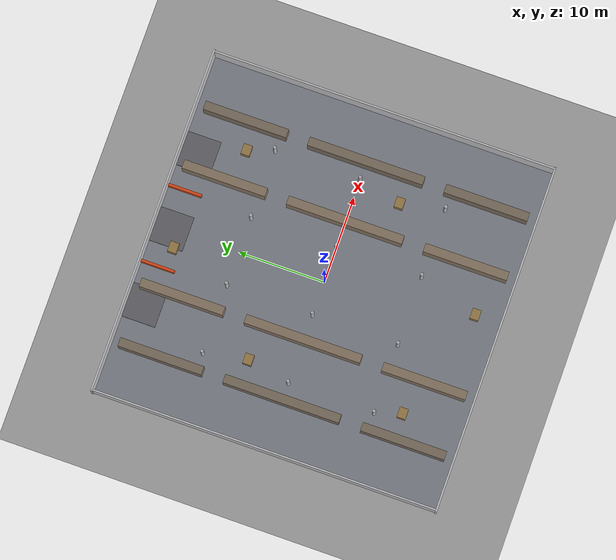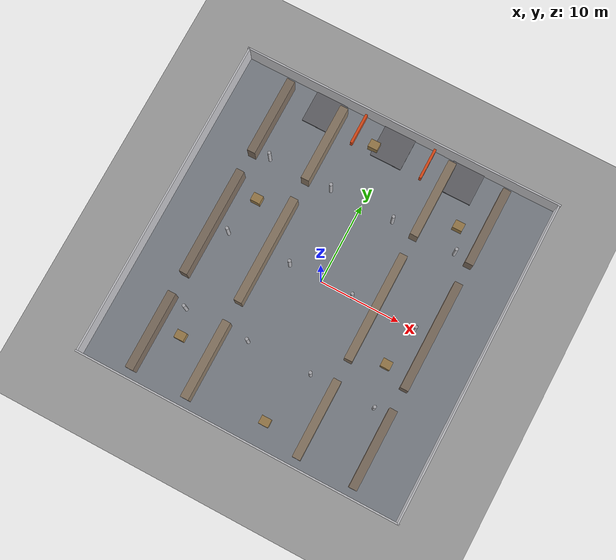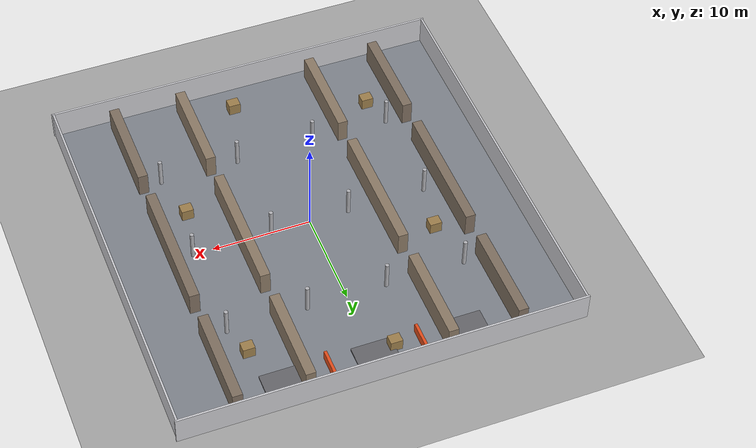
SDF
<?xml version="1.0"?>
<sdf version="1.11">
  <world name="large_warehouse">

    <!-- ── Physics ─────────────────────────────────────────────────────── -->
    <physics name="1ms" type="ignored">
      <max_step_size>0.001</max_step_size>
      <real_time_factor>1.0</real_time_factor>
    </physics>

    <!-- ── System plugins ──────────────────────────────────────────────── -->
    <plugin filename="gz-sim-physics-system"
            name="gz::sim::systems::Physics"/>
    <plugin filename="gz-sim-sensors-system"
            name="gz::sim::systems::Sensors">
      <render_engine>ogre2</render_engine>
    </plugin>
    <plugin filename="gz-sim-scene-broadcaster-system"
            name="gz::sim::systems::SceneBroadcaster"/>
    <plugin filename="gz-sim-user-commands-system"
            name="gz::sim::systems::UserCommands"/>
    <plugin filename="gz-sim-imu-system"
            name="gz::sim::systems::Imu"/>

    <!-- ── Lighting ────────────────────────────────────────────────────── -->
    <light name="overhead_main" type="directional">
      <cast_shadows>true</cast_shadows>
      <pose>0 0 15 0 0 0</pose>
      <diffuse>0.9 0.9 0.9 1</diffuse>
      <specular>0.2 0.2 0.2 1</specular>
      <direction>0 0 -1</direction>
    </light>
    <light name="fill_north" type="directional">
      <cast_shadows>false</cast_shadows>
      <pose>0 15 10 0 0 0</pose>
      <diffuse>0.4 0.4 0.4 1</diffuse>
      <specular>0.0 0.0 0.0 1</specular>
      <direction>0 -0.5 -0.86</direction>
    </light>
    <light name="fill_south" type="directional">
      <cast_shadows>false</cast_shadows>
      <pose>0 -15 10 0 0 0</pose>
      <diffuse>0.3 0.3 0.3 1</diffuse>
      <specular>0.0 0.0 0.0 1</specular>
      <direction>0 0.5 -0.86</direction>
    </light>

    <!-- ── Ground plane ─────────────────────────────────────────────────── -->
    <model name="ground_plane">
      <static>true</static>
      <link name="link">
        <collision name="collision">
          <geometry><plane><normal>0 0 1</normal><size>100 100</size></plane></geometry>
        </collision>
        <visual name="visual">
          <geometry><plane><normal>0 0 1</normal><size>100 100</size></plane></geometry>
          <material>
            <ambient>0.65 0.65 0.65 1</ambient>
            <diffuse>0.65 0.65 0.65 1</diffuse>
          </material>
        </visual>
      </link>
    </model>

    <!-- Warehouse floor overlay (40 × 40 m, polished-concrete look) -->
    <model name="warehouse_floor">
      <static>true</static>
      <pose>0 0 0.001 0 0 0</pose>
      <link name="link">
        <visual name="visual">
          <geometry><box><size>40 40 0.001</size></box></geometry>
          <material>
            <ambient>0.50 0.52 0.55 1</ambient>
            <diffuse>0.50 0.52 0.55 1</diffuse>
            <specular>0.10 0.10 0.10 1</specular>
          </material>
        </visual>
      </link>
    </model>

    <model name="wall_north">
      <static>true</static>
      <pose>0 20 1.5 0 0 0</pose>
      <link name="link">
        <collision name="collision">
          <geometry><box><size>40.4 0.2 3.0</size></box></geometry>
        </collision>
        <visual name="visual">
          <geometry><box><size>40.4 0.2 3.0</size></box></geometry>
          <material><ambient>0.80 0.80 0.82 1</ambient><diffuse>0.80 0.80 0.82 1</diffuse></material>
        </visual>
      </link>
    </model>

    <model name="wall_south">
      <static>true</static>
      <pose>0 -20 1.5 0 0 0</pose>
      <link name="link">
        <collision name="collision">
          <geometry><box><size>40.4 0.2 3.0</size></box></geometry>
        </collision>
        <visual name="visual">
          <geometry><box><size>40.4 0.2 3.0</size></box></geometry>
          <material><ambient>0.80 0.80 0.82 1</ambient><diffuse>0.80 0.80 0.82 1</diffuse></material>
        </visual>
      </link>
    </model>

    <model name="wall_east">
      <static>true</static>
      <pose>20 0 1.5 0 0 0</pose>
      <link name="link">
        <collision name="collision">
          <geometry><box><size>0.2 40.0 3.0</size></box></geometry>
        </collision>
        <visual name="visual">
          <geometry><box><size>0.2 40.0 3.0</size></box></geometry>
          <material><ambient>0.80 0.80 0.82 1</ambient><diffuse>0.80 0.80 0.82 1</diffuse></material>
        </visual>
      </link>
    </model>

    <model name="wall_west">
      <static>true</static>
      <pose>-20 0 1.5 0 0 0</pose>
      <link name="link">
        <collision name="collision">
          <geometry><box><size>0.2 40.0 3.0</size></box></geometry>
        </collision>
        <visual name="visual">
          <geometry><box><size>0.2 40.0 3.0</size></box></geometry>
          <material><ambient>0.80 0.80 0.82 1</ambient><diffuse>0.80 0.80 0.82 1</diffuse></material>
        </visual>
      </link>
    </model>

    <!-- Row y=10 -->
    <model name="pillar_r1c1"><static>true</static><pose>-12 10 1.5 0 0 0</pose>
      <link name="link">
        <collision name="collision"><geometry><cylinder><radius>0.20</radius><length>3.0</length></cylinder></geometry></collision>
        <visual name="visual"><geometry><cylinder><radius>0.20</radius><length>3.0</length></cylinder></geometry>
          <material><ambient>0.70 0.70 0.72 1</ambient><diffuse>0.70 0.70 0.72 1</diffuse></material></visual>
      </link>
    </model>
    <model name="pillar_r1c2"><static>true</static><pose>-4 10 1.5 0 0 0</pose>
      <link name="link">
        <collision name="collision"><geometry><cylinder><radius>0.20</radius><length>3.0</length></cylinder></geometry></collision>
        <visual name="visual"><geometry><cylinder><radius>0.20</radius><length>3.0</length></cylinder></geometry>
          <material><ambient>0.70 0.70 0.72 1</ambient><diffuse>0.70 0.70 0.72 1</diffuse></material></visual>
      </link>
    </model>
    <model name="pillar_r1c3"><static>true</static><pose>4 10 1.5 0 0 0</pose>
      <link name="link">
        <collision name="collision"><geometry><cylinder><radius>0.20</radius><length>3.0</length></cylinder></geometry></collision>
        <visual name="visual"><geometry><cylinder><radius>0.20</radius><length>3.0</length></cylinder></geometry>
          <material><ambient>0.70 0.70 0.72 1</ambient><diffuse>0.70 0.70 0.72 1</diffuse></material></visual>
      </link>
    </model>
    <model name="pillar_r1c4"><static>true</static><pose>12 10 1.5 0 0 0</pose>
      <link name="link">
        <collision name="collision"><geometry><cylinder><radius>0.20</radius><length>3.0</length></cylinder></geometry></collision>
        <visual name="visual"><geometry><cylinder><radius>0.20</radius><length>3.0</length></cylinder></geometry>
          <material><ambient>0.70 0.70 0.72 1</ambient><diffuse>0.70 0.70 0.72 1</diffuse></material></visual>
      </link>
    </model>

    <!-- Row y=0 -->
    <model name="pillar_r2c1"><static>true</static><pose>-12 0 1.5 0 0 0</pose>
      <link name="link">
        <collision name="collision"><geometry><cylinder><radius>0.20</radius><length>3.0</length></cylinder></geometry></collision>
        <visual name="visual"><geometry><cylinder><radius>0.20</radius><length>3.0</length></cylinder></geometry>
          <material><ambient>0.70 0.70 0.72 1</ambient><diffuse>0.70 0.70 0.72 1</diffuse></material></visual>
      </link>
    </model>
    <model name="pillar_r2c2"><static>true</static><pose>-4 0 1.5 0 0 0</pose>
      <link name="link">
        <collision name="collision"><geometry><cylinder><radius>0.20</radius><length>3.0</length></cylinder></geometry></collision>
        <visual name="visual"><geometry><cylinder><radius>0.20</radius><length>3.0</length></cylinder></geometry>
          <material><ambient>0.70 0.70 0.72 1</ambient><diffuse>0.70 0.70 0.72 1</diffuse></material></visual>
      </link>
    </model>
    <model name="pillar_r2c3"><static>true</static><pose>4 0 1.5 0 0 0</pose>
      <link name="link">
        <collision name="collision"><geometry><cylinder><radius>0.20</radius><length>3.0</length></cylinder></geometry></collision>
        <visual name="visual"><geometry><cylinder><radius>0.20</radius><length>3.0</length></cylinder></geometry>
          <material><ambient>0.70 0.70 0.72 1</ambient><diffuse>0.70 0.70 0.72 1</diffuse></material></visual>
      </link>
    </model>
    <model name="pillar_r2c4"><static>true</static><pose>12 0 1.5 0 0 0</pose>
      <link name="link">
        <collision name="collision"><geometry><cylinder><radius>0.20</radius><length>3.0</length></cylinder></geometry></collision>
        <visual name="visual"><geometry><cylinder><radius>0.20</radius><length>3.0</length></cylinder></geometry>
          <material><ambient>0.70 0.70 0.72 1</ambient><diffuse>0.70 0.70 0.72 1</diffuse></material></visual>
      </link>
    </model>

    <!-- Row y=-10 -->
    <model name="pillar_r3c1"><static>true</static><pose>-12 -10 1.5 0 0 0</pose>
      <link name="link">
        <collision name="collision"><geometry><cylinder><radius>0.20</radius><length>3.0</length></cylinder></geometry></collision>
        <visual name="visual"><geometry><cylinder><radius>0.20</radius><length>3.0</length></cylinder></geometry>
          <material><ambient>0.70 0.70 0.72 1</ambient><diffuse>0.70 0.70 0.72 1</diffuse></material></visual>
      </link>
    </model>
    <model name="pillar_r3c2"><static>true</static><pose>-4 -10 1.5 0 0 0</pose>
      <link name="link">
        <collision name="collision"><geometry><cylinder><radius>0.20</radius><length>3.0</length></cylinder></geometry></collision>
        <visual name="visual"><geometry><cylinder><radius>0.20</radius><length>3.0</length></cylinder></geometry>
          <material><ambient>0.70 0.70 0.72 1</ambient><diffuse>0.70 0.70 0.72 1</diffuse></material></visual>
      </link>
    </model>
    <model name="pillar_r3c3"><static>true</static><pose>4 -10 1.5 0 0 0</pose>
      <link name="link">
        <collision name="collision"><geometry><cylinder><radius>0.20</radius><length>3.0</length></cylinder></geometry></collision>
        <visual name="visual"><geometry><cylinder><radius>0.20</radius><length>3.0</length></cylinder></geometry>
          <material><ambient>0.70 0.70 0.72 1</ambient><diffuse>0.70 0.70 0.72 1</diffuse></material></visual>
      </link>
    </model>
    <model name="pillar_r3c4"><static>true</static><pose>12 -10 1.5 0 0 0</pose>
      <link name="link">
        <collision name="collision"><geometry><cylinder><radius>0.20</radius><length>3.0</length></cylinder></geometry></collision>
        <visual name="visual"><geometry><cylinder><radius>0.20</radius><length>3.0</length></cylinder></geometry>
          <material><ambient>0.70 0.70 0.72 1</ambient><diffuse>0.70 0.70 0.72 1</diffuse></material></visual>
      </link>
    </model>

    <!-- West inner shelf row — two segments split by cross-aisle -->
    <!-- Segment 1: y = -19 to y = -9.25 (length = 9.75 m) -->
    <model name="shelf_w1_seg1">
      <static>true</static>
      <pose>-7 -14.125 1.25 0 0 0</pose>
      <link name="link">
        <collision name="collision">
          <geometry><box><size>1.0 9.75 2.5</size></box></geometry>
        </collision>
        <visual name="visual">
          <geometry><box><size>1.0 9.75 2.5</size></box></geometry>
          <material><ambient>0.55 0.48 0.40 1</ambient><diffuse>0.55 0.48 0.40 1</diffuse></material>
        </visual>
      </link>
    </model>
    <!-- Segment 2: y = -6.75 to y = +6.75 (length = 13.5 m — spans centre) -->
    <model name="shelf_w1_seg2">
      <static>true</static>
      <pose>-7 0 1.25 0 0 0</pose>
      <link name="link">
        <collision name="collision">
          <geometry><box><size>1.0 13.5 2.5</size></box></geometry>
        </collision>
        <visual name="visual">
          <geometry><box><size>1.0 13.5 2.5</size></box></geometry>
          <material><ambient>0.55 0.48 0.40 1</ambient><diffuse>0.55 0.48 0.40 1</diffuse></material>
        </visual>
      </link>
    </model>
    <!-- Segment 3: y = +9.25 to y = +19 (length = 9.75 m) -->
    <model name="shelf_w1_seg3">
      <static>true</static>
      <pose>-7 14.125 1.25 0 0 0</pose>
      <link name="link">
        <collision name="collision">
          <geometry><box><size>1.0 9.75 2.5</size></box></geometry>
        </collision>
        <visual name="visual">
          <geometry><box><size>1.0 9.75 2.5</size></box></geometry>
          <material><ambient>0.55 0.48 0.40 1</ambient><diffuse>0.55 0.48 0.40 1</diffuse></material>
        </visual>
      </link>
    </model>

    <!-- West outer shelf row (back row) — same split pattern -->
    <model name="shelf_w2_seg1">
      <static>true</static>
      <pose>-14 -14.125 1.25 0 0 0</pose>
      <link name="link">
        <collision name="collision">
          <geometry><box><size>1.0 9.75 2.5</size></box></geometry>
        </collision>
        <visual name="visual">
          <geometry><box><size>1.0 9.75 2.5</size></box></geometry>
          <material><ambient>0.50 0.44 0.38 1</ambient><diffuse>0.50 0.44 0.38 1</diffuse></material>
        </visual>
      </link>
    </model>
    <model name="shelf_w2_seg2">
      <static>true</static>
      <pose>-14 0 1.25 0 0 0</pose>
      <link name="link">
        <collision name="collision">
          <geometry><box><size>1.0 13.5 2.5</size></box></geometry>
        </collision>
        <visual name="visual">
          <geometry><box><size>1.0 13.5 2.5</size></box></geometry>
          <material><ambient>0.50 0.44 0.38 1</ambient><diffuse>0.50 0.44 0.38 1</diffuse></material>
        </visual>
      </link>
    </model>
    <model name="shelf_w2_seg3">
      <static>true</static>
      <pose>-14 14.125 1.25 0 0 0</pose>
      <link name="link">
        <collision name="collision">
          <geometry><box><size>1.0 9.75 2.5</size></box></geometry>
        </collision>
        <visual name="visual">
          <geometry><box><size>1.0 9.75 2.5</size></box></geometry>
          <material><ambient>0.50 0.44 0.38 1</ambient><diffuse>0.50 0.44 0.38 1</diffuse></material>
        </visual>
      </link>
    </model>

    <!-- East inner shelf row -->
    <model name="shelf_e1_seg1">
      <static>true</static>
      <pose>7 -14.125 1.25 0 0 0</pose>
      <link name="link">
        <collision name="collision">
          <geometry><box><size>1.0 9.75 2.5</size></box></geometry>
        </collision>
        <visual name="visual">
          <geometry><box><size>1.0 9.75 2.5</size></box></geometry>
          <material><ambient>0.55 0.48 0.40 1</ambient><diffuse>0.55 0.48 0.40 1</diffuse></material>
        </visual>
      </link>
    </model>
    <model name="shelf_e1_seg2">
      <static>true</static>
      <pose>7 0 1.25 0 0 0</pose>
      <link name="link">
        <collision name="collision">
          <geometry><box><size>1.0 13.5 2.5</size></box></geometry>
        </collision>
        <visual name="visual">
          <geometry><box><size>1.0 13.5 2.5</size></box></geometry>
          <material><ambient>0.55 0.48 0.40 1</ambient><diffuse>0.55 0.48 0.40 1</diffuse></material>
        </visual>
      </link>
    </model>
    <model name="shelf_e1_seg3">
      <static>true</static>
      <pose>7 14.125 1.25 0 0 0</pose>
      <link name="link">
        <collision name="collision">
          <geometry><box><size>1.0 9.75 2.5</size></box></geometry>
        </collision>
        <visual name="visual">
          <geometry><box><size>1.0 9.75 2.5</size></box></geometry>
          <material><ambient>0.55 0.48 0.40 1</ambient><diffuse>0.55 0.48 0.40 1</diffuse></material>
        </visual>
      </link>
    </model>

    <!-- East outer shelf row -->
    <model name="shelf_e2_seg1">
      <static>true</static>
      <pose>14 -14.125 1.25 0 0 0</pose>
      <link name="link">
        <collision name="collision">
          <geometry><box><size>1.0 9.75 2.5</size></box></geometry>
        </collision>
        <visual name="visual">
          <geometry><box><size>1.0 9.75 2.5</size></box></geometry>
          <material><ambient>0.50 0.44 0.38 1</ambient><diffuse>0.50 0.44 0.38 1</diffuse></material>
        </visual>
      </link>
    </model>
    <model name="shelf_e2_seg2">
      <static>true</static>
      <pose>14 0 1.25 0 0 0</pose>
      <link name="link">
        <collision name="collision">
          <geometry><box><size>1.0 13.5 2.5</size></box></geometry>
        </collision>
        <visual name="visual">
          <geometry><box><size>1.0 13.5 2.5</size></box></geometry>
          <material><ambient>0.50 0.44 0.38 1</ambient><diffuse>0.50 0.44 0.38 1</diffuse></material>
        </visual>
      </link>
    </model>
    <model name="shelf_e2_seg3">
      <static>true</static>
      <pose>14 14.125 1.25 0 0 0</pose>
      <link name="link">
        <collision name="collision">
          <geometry><box><size>1.0 9.75 2.5</size></box></geometry>
        </collision>
        <visual name="visual">
          <geometry><box><size>1.0 9.75 2.5</size></box></geometry>
          <material><ambient>0.50 0.44 0.38 1</ambient><diffuse>0.50 0.44 0.38 1</diffuse></material>
        </visual>
      </link>
    </model>

    <model name="dock_platform_west">
      <static>true</static>
      <pose>-9 18 0.1 0 0 0</pose>
      <link name="link">
        <collision name="collision">
          <geometry><box><size>4.0 4.0 0.2</size></box></geometry>
        </collision>
        <visual name="visual">
          <geometry><box><size>4.0 4.0 0.2</size></box></geometry>
          <material><ambient>0.40 0.40 0.42 1</ambient><diffuse>0.40 0.40 0.42 1</diffuse></material>
        </visual>
      </link>
    </model>
    <model name="dock_platform_centre">
      <static>true</static>
      <pose>0 18 0.1 0 0 0</pose>
      <link name="link">
        <collision name="collision">
          <geometry><box><size>4.0 4.0 0.2</size></box></geometry>
        </collision>
        <visual name="visual">
          <geometry><box><size>4.0 4.0 0.2</size></box></geometry>
          <material><ambient>0.40 0.40 0.42 1</ambient><diffuse>0.40 0.40 0.42 1</diffuse></material>
        </visual>
      </link>
    </model>
    <model name="dock_platform_east">
      <static>true</static>
      <pose>9 18 0.1 0 0 0</pose>
      <link name="link">
        <collision name="collision">
          <geometry><box><size>4.0 4.0 0.2</size></box></geometry>
        </collision>
        <visual name="visual">
          <geometry><box><size>4.0 4.0 0.2</size></box></geometry>
          <material><ambient>0.40 0.40 0.42 1</ambient><diffuse>0.40 0.40 0.42 1</diffuse></material>
        </visual>
      </link>
    </model>

    <!-- Dock dividers (bumper posts between bays) -->
    <model name="dock_divider_1">
      <static>true</static>
      <pose>-4.5 18 0.5 0 0 0</pose>
      <link name="link">
        <collision name="collision"><geometry><box><size>0.3 4.0 1.0</size></box></geometry></collision>
        <visual name="visual"><geometry><box><size>0.3 4.0 1.0</size></box></geometry>
          <material><ambient>0.90 0.30 0.10 1</ambient><diffuse>0.90 0.30 0.10 1</diffuse></material></visual>
      </link>
    </model>
    <model name="dock_divider_2">
      <static>true</static>
      <pose>4.5 18 0.5 0 0 0</pose>
      <link name="link">
        <collision name="collision"><geometry><box><size>0.3 4.0 1.0</size></box></geometry></collision>
        <visual name="visual"><geometry><box><size>0.3 4.0 1.0</size></box></geometry>
          <material><ambient>0.90 0.30 0.10 1</ambient><diffuse>0.90 0.30 0.10 1</diffuse></material></visual>
      </link>
    </model>

    <model name="pallet_1"><static>true</static><pose>-11 5 0.6 0 0 0</pose>
      <link name="link">
        <collision name="collision"><geometry><box><size>1.2 1.0 1.2</size></box></geometry></collision>
        <visual name="visual"><geometry><box><size>1.2 1.0 1.2</size></box></geometry>
          <material><ambient>0.62 0.50 0.30 1</ambient><diffuse>0.62 0.50 0.30 1</diffuse></material></visual>
      </link>
    </model>
    <model name="pallet_2"><static>true</static><pose>11 -5 0.6 0 0 0</pose>
      <link name="link">
        <collision name="collision"><geometry><box><size>1.2 1.0 1.2</size></box></geometry></collision>
        <visual name="visual"><geometry><box><size>1.2 1.0 1.2</size></box></geometry>
          <material><ambient>0.62 0.50 0.30 1</ambient><diffuse>0.62 0.50 0.30 1</diffuse></material></visual>
      </link>
    </model>
    <model name="pallet_3"><static>true</static><pose>-11 -13 0.6 0 0 0</pose>
      <link name="link">
        <collision name="collision"><geometry><box><size>1.2 1.0 1.2</size></box></geometry></collision>
        <visual name="visual"><geometry><box><size>1.2 1.0 1.2</size></box></geometry>
          <material><ambient>0.62 0.50 0.30 1</ambient><diffuse>0.62 0.50 0.30 1</diffuse></material></visual>
      </link>
    </model>
    <model name="pallet_4"><static>true</static><pose>11 13 0.6 0 0 0</pose>
      <link name="link">
        <collision name="collision"><geometry><box><size>1.2 1.0 1.2</size></box></geometry></collision>
        <visual name="visual"><geometry><box><size>1.2 1.0 1.2</size></box></geometry>
          <material><ambient>0.62 0.50 0.30 1</ambient><diffuse>0.62 0.50 0.30 1</diffuse></material></visual>
      </link>
    </model>
    <model name="pallet_5"><static>true</static><pose>2 -17 0.6 0 0 0</pose>
      <link name="link">
        <collision name="collision"><geometry><box><size>1.2 1.0 1.2</size></box></geometry></collision>
        <visual name="visual"><geometry><box><size>1.2 1.0 1.2</size></box></geometry>
          <material><ambient>0.62 0.50 0.30 1</ambient><diffuse>0.62 0.50 0.30 1</diffuse></material></visual>
      </link>
    </model>
    <model name="pallet_6"><static>true</static><pose>-2 17 0.6 0 0 0</pose>
      <link name="link">
        <collision name="collision"><geometry><box><size>1.2 1.0 1.2</size></box></geometry></collision>
        <visual name="visual"><geometry><box><size>1.2 1.0 1.2</size></box></geometry>
          <material><ambient>0.62 0.50 0.30 1</ambient><diffuse>0.62 0.50 0.30 1</diffuse></material></visual>
      </link>
    </model>

  </world>
</sdf>
